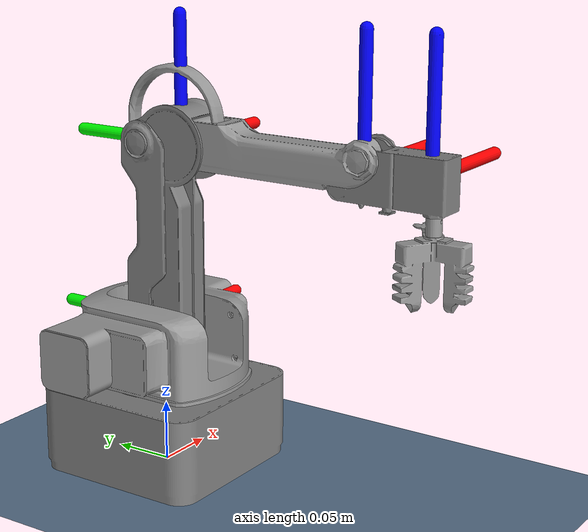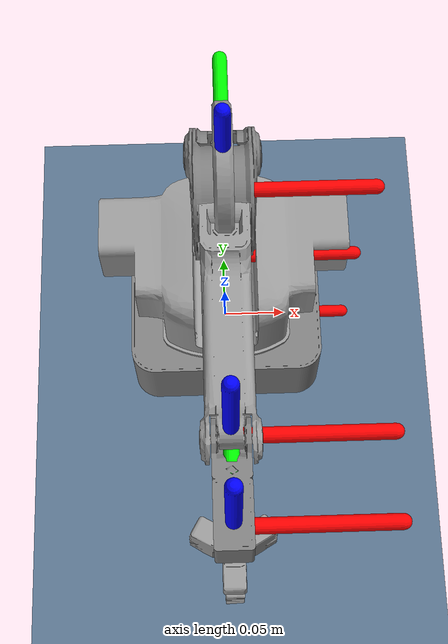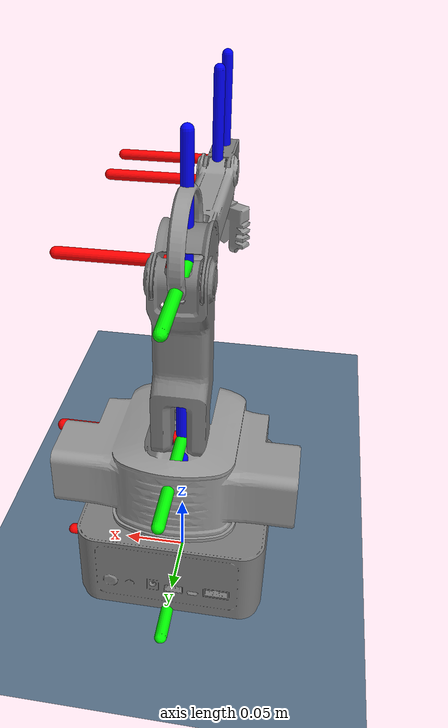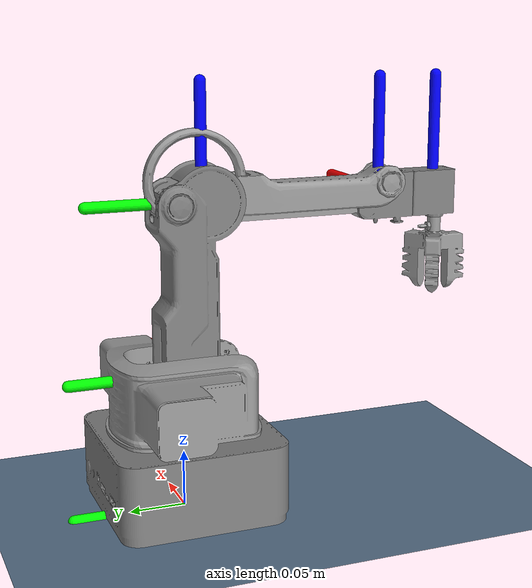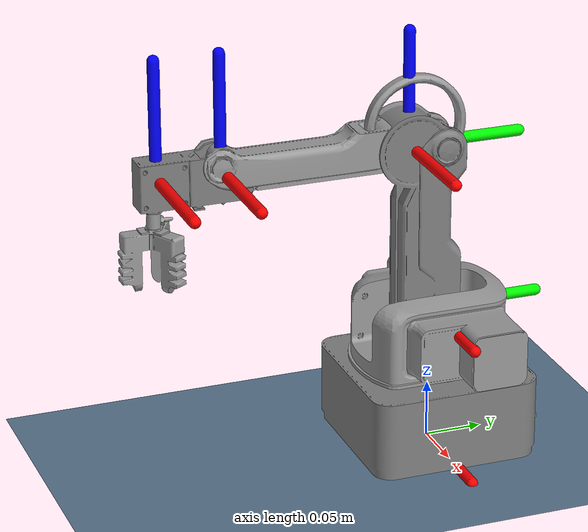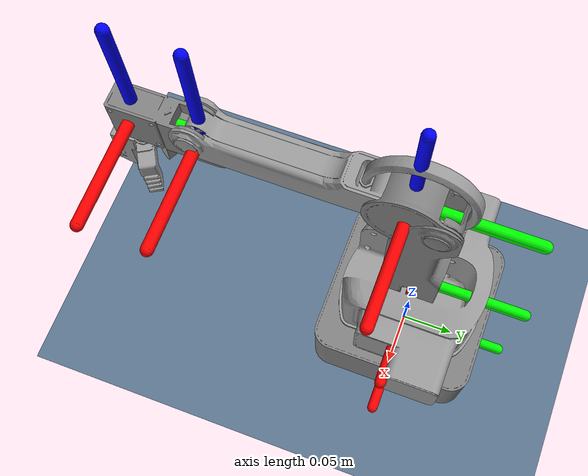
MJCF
<mujoco model="robot_arm">
  <compiler angle="radian"/>
  <option gravity="0 0 0"/>
  <default>
    <default class="/"/>
    <default class="coordinate_axes/"/>
    <default class="coordinate_axes_1/"/>
    <default class="coordinate_axes_2/"/>
    <default class="coordinate_axes_3/"/>
    <default class="coordinate_axes_4/"/>
    <default class="coordinate_axes_5/"/>
    <default class="coordinate_axes_6/"/>
  </default>
  <asset>
    <texture name="groundplane" type="2d" builtin="checker" rgb1="0.20000000000000001 0.29999999999999999 0.40000000000000002" rgb2="0.5 0.59999999999999998 0.69999999999999996" mark="edge" markrgb="0.80000000000000004 0.80000000000000004 0.80000000000000004" width="300" height="300"/>
    <material name="groundplane" class="/" texture="groundplane" texrepeat="5 5" texuniform="true" reflectance="0.5"/>
    <texture name="metal_gradient_bright" type="2d" builtin="gradient" rgb1="0.80000000000000004 0.80000000000000004 0.80000000000000004" rgb2="0.20000000000000001 0.20000000000000001 0.20000000000000001" width="100" height="100"/>
    <material name="metal_gradient_bright_material" class="/" texture="metal_gradient_bright" texuniform="true" reflectance="0.5"/>
    <texture name="metal_gradient_dark" type="2d" builtin="gradient" rgb1="0.40000000000000002 0.40000000000000002 0.40000000000000002" rgb2="0.80000000000000004 0.80000000000000004 0.80000000000000004" width="100" height="100"/>
    <material name="metal_gradient_dark_material" class="/" texture="metal_gradient_dark" texuniform="true" reflectance="0.5"/>
    <mesh name="base_mesh" class="/" file="magician_lite_base_simple.stl" scale="0.001 0.001 0.001"/>
    <mesh name="link1_mesh" class="/" file="magician_lite_link1_simple.stl" scale="0.001 0.001 0.001"/>
    <mesh name="link2_mesh" class="/" file="magician_lite_link2_simple.stl" scale="0.001 0.001 0.001"/>
    <mesh name="link3_mesh" class="/" file="magician_lite_link3_simple.stl" scale="0.001 0.001 0.001"/>
    <mesh name="link4_mesh" class="/" file="magician_lite_link4_simple.stl" scale="0.001 0.001 0.001"/>
    <mesh name="link5_mesh" class="/" file="magician_lite_link5_simple.stl" scale="0.001 0.001 0.001"/>
    <material name="coordinate_axes/red" class="coordinate_axes/" rgba="1 0 0 1"/>
    <material name="coordinate_axes/green" class="coordinate_axes/" rgba="0 1 0 1"/>
    <material name="coordinate_axes/blue" class="coordinate_axes/" rgba="0 0 1 1"/>
    <material name="coordinate_axes_1/red" class="coordinate_axes_1/" rgba="1 0 0 1"/>
    <material name="coordinate_axes_1/green" class="coordinate_axes_1/" rgba="0 1 0 1"/>
    <material name="coordinate_axes_1/blue" class="coordinate_axes_1/" rgba="0 0 1 1"/>
    <material name="coordinate_axes_2/red" class="coordinate_axes_2/" rgba="1 0 0 1"/>
    <material name="coordinate_axes_2/green" class="coordinate_axes_2/" rgba="0 1 0 1"/>
    <material name="coordinate_axes_2/blue" class="coordinate_axes_2/" rgba="0 0 1 1"/>
    <material name="coordinate_axes_3/red" class="coordinate_axes_3/" rgba="1 0 0 1"/>
    <material name="coordinate_axes_3/green" class="coordinate_axes_3/" rgba="0 1 0 1"/>
    <material name="coordinate_axes_3/blue" class="coordinate_axes_3/" rgba="0 0 1 1"/>
    <material name="coordinate_axes_4/red" class="coordinate_axes_4/" rgba="1 0 0 1"/>
    <material name="coordinate_axes_4/green" class="coordinate_axes_4/" rgba="0 1 0 1"/>
    <material name="coordinate_axes_4/blue" class="coordinate_axes_4/" rgba="0 0 1 1"/>
    <material name="coordinate_axes_5/red" class="coordinate_axes_5/" rgba="1 0 0 1"/>
    <material name="coordinate_axes_5/green" class="coordinate_axes_5/" rgba="0 1 0 1"/>
    <material name="coordinate_axes_5/blue" class="coordinate_axes_5/" rgba="0 0 1 1"/>
    <material name="coordinate_axes_6/red" class="coordinate_axes_6/" rgba="1 0 0 1"/>
    <material name="coordinate_axes_6/green" class="coordinate_axes_6/" rgba="0 1 0 1"/>
    <material name="coordinate_axes_6/blue" class="coordinate_axes_6/" rgba="0 0 1 1"/>
  </asset>
  <worldbody>
    <geom name="ground" class="/" type="plane" size="5 5 1" material="groundplane"/>
    <light name="//unnamed_light_0" class="/" pos="0 0 10" dir="0 0 -1"/>
    <body name="base">
      <geom name="base_geom" class="/" type="mesh" material="metal_gradient_bright_material" pos="0.02 0 0.107" mesh="base_mesh"/>
      <site name="//unnamed_site_0" class="/" pos="0 0 0"/>
      <body pos="0 0 0" name="coordinate_axes/">
        <body name="coordinate_axes/axes">
          <geom name="coordinate_axes//unnamed_geom_0" class="coordinate_axes/" type="capsule" contype="0" conaffinity="0" size="0.0050000000000000001" material="coordinate_axes/red" fromto="0 0 0 0.10000000000000001 0 0"/>
          <geom name="coordinate_axes//unnamed_geom_1" class="coordinate_axes/" type="capsule" contype="0" conaffinity="0" size="0.0050000000000000001" material="coordinate_axes/green" fromto="0 0 0 0 0.10000000000000001 0"/>
          <geom name="coordinate_axes//unnamed_geom_2" class="coordinate_axes/" type="capsule" contype="0" conaffinity="0" size="0.0050000000000000001" material="coordinate_axes/blue" fromto="0 0 0 0 0 0.10000000000000001"/>
        </body>
      </body>
      <body name="link1" pos="0 0 0.12200999999999999" quat="1 0 0 0">
        <geom name="link1_geom" class="/" type="mesh" material="metal_gradient_dark_material" pos="0.02 0 -0.014999999999999999" mesh="link1_mesh"/>
        <site name="//unnamed_site_1" class="/" pos="0 0 0"/>
        <body pos="0 0 0" name="coordinate_axes_1/">
          <body name="coordinate_axes_1/axes">
            <geom name="coordinate_axes_1//unnamed_geom_0" class="coordinate_axes_1/" type="capsule" contype="0" conaffinity="0" size="0.0050000000000000001" material="coordinate_axes_1/red" fromto="0 0 0 0.10000000000000001 0 0"/>
            <geom name="coordinate_axes_1//unnamed_geom_1" class="coordinate_axes_1/" type="capsule" contype="0" conaffinity="0" size="0.0050000000000000001" material="coordinate_axes_1/green" fromto="0 0 0 0 0.10000000000000001 0"/>
            <geom name="coordinate_axes_1//unnamed_geom_2" class="coordinate_axes_1/" type="capsule" contype="0" conaffinity="0" size="0.0050000000000000001" material="coordinate_axes_1/blue" fromto="0 0 0 0 0 0.10000000000000001"/>
          </body>
        </body>
        <joint name="joint1" class="/" type="hinge" axis="0 0 1" range="-3.1415926535897931 3.1415926535897931" damping="0.20000000000000001"/>
        <body name="link2" pos="0 0 0" quat="1 0 0 0">
          <geom name="link2_geom" class="/" type="mesh" material="metal_gradient_bright_material" pos="0.02 0 -0.014999999999999999" mesh="link2_mesh"/>
          <site name="//unnamed_site_2" class="/" pos="0 0 0"/>
          <body pos="0 0 0" name="coordinate_axes_2/">
            <body name="coordinate_axes_2/axes">
              <geom name="coordinate_axes_2//unnamed_geom_0" class="coordinate_axes_2/" type="capsule" contype="0" conaffinity="0" size="0.0050000000000000001" material="coordinate_axes_2/red" fromto="0 0 0 0.10000000000000001 0 0"/>
              <geom name="coordinate_axes_2//unnamed_geom_1" class="coordinate_axes_2/" type="capsule" contype="0" conaffinity="0" size="0.0050000000000000001" material="coordinate_axes_2/green" fromto="0 0 0 0 0.10000000000000001 0"/>
              <geom name="coordinate_axes_2//unnamed_geom_2" class="coordinate_axes_2/" type="capsule" contype="0" conaffinity="0" size="0.0050000000000000001" material="coordinate_axes_2/blue" fromto="0 0 0 0 0 0.10000000000000001"/>
            </body>
          </body>
          <joint name="joint2" class="/" type="hinge" axis="1 0 0" range="-3.1415926535897931 3.1415926535897931" damping="0.20000000000000001"/>
          <body name="link3" pos="0 -0.02 0.14999999999999999" quat="1 0 0 0">
            <geom name="link3_geom" class="/" type="mesh" material="metal_gradient_dark_material" pos="0.02 0.02 -0.16499999999999998" mesh="link3_mesh"/>
            <site name="//unnamed_site_3" class="/" pos="0 0 0"/>
            <body pos="0 0 0" name="coordinate_axes_3/">
              <body name="coordinate_axes_3/axes">
                <geom name="coordinate_axes_3//unnamed_geom_0" class="coordinate_axes_3/" type="capsule" contype="0" conaffinity="0" size="0.0050000000000000001" material="coordinate_axes_3/red" fromto="0 0 0 0.10000000000000001 0 0"/>
                <geom name="coordinate_axes_3//unnamed_geom_1" class="coordinate_axes_3/" type="capsule" contype="0" conaffinity="0" size="0.0050000000000000001" material="coordinate_axes_3/green" fromto="0 0 0 0 0.10000000000000001 0"/>
                <geom name="coordinate_axes_3//unnamed_geom_2" class="coordinate_axes_3/" type="capsule" contype="0" conaffinity="0" size="0.0050000000000000001" material="coordinate_axes_3/blue" fromto="0 0 0 0 0 0.10000000000000001"/>
              </body>
            </body>
            <joint name="joint3" class="/" type="hinge" axis="1 0 0" range="-3.1415926535897931 3.1415926535897931" damping="0.20000000000000001"/>
            <body name="link4" pos="0 -0.16500000000000001 0" quat="1 0 0 0">
              <geom name="link4_geom" class="/" type="mesh" material="metal_gradient_bright_material" pos="0.02 0.185 -0.16499999999999998" mesh="link4_mesh"/>
              <site name="//unnamed_site_4" class="/" pos="0 0 0"/>
              <body pos="0 0 0" name="coordinate_axes_4/">
                <body name="coordinate_axes_4/axes">
                  <geom name="coordinate_axes_4//unnamed_geom_0" class="coordinate_axes_4/" type="capsule" contype="0" conaffinity="0" size="0.0050000000000000001" material="coordinate_axes_4/red" fromto="0 0 0 0.10000000000000001 0 0"/>
                  <geom name="coordinate_axes_4//unnamed_geom_1" class="coordinate_axes_4/" type="capsule" contype="0" conaffinity="0" size="0.0050000000000000001" material="coordinate_axes_4/green" fromto="0 0 0 0 0.10000000000000001 0"/>
                  <geom name="coordinate_axes_4//unnamed_geom_2" class="coordinate_axes_4/" type="capsule" contype="0" conaffinity="0" size="0.0050000000000000001" material="coordinate_axes_4/blue" fromto="0 0 0 0 0 0.10000000000000001"/>
                </body>
              </body>
              <joint name="joint4" class="/" type="hinge" axis="1 0 0" range="-3.1415926535897931 3.1415926535897931" damping="0.20000000000000001"/>
              <body name="link5" pos="0 -0.055 0" quat="1 0 0 0">
                <geom name="link5_geom" class="/" type="mesh" material="metal_gradient_dark_material" pos="0.02 0.23999999999999999 -0.16499999999999998" mesh="link5_mesh"/>
                <site name="//unnamed_site_5" class="/" pos="0 0 0"/>
                <body pos="0 0 0" name="coordinate_axes_5/">
                  <body name="coordinate_axes_5/axes">
                    <geom name="coordinate_axes_5//unnamed_geom_0" class="coordinate_axes_5/" type="capsule" contype="0" conaffinity="0" size="0.0050000000000000001" material="coordinate_axes_5/red" fromto="0 0 0 0.10000000000000001 0 0"/>
                    <geom name="coordinate_axes_5//unnamed_geom_1" class="coordinate_axes_5/" type="capsule" contype="0" conaffinity="0" size="0.0050000000000000001" material="coordinate_axes_5/green" fromto="0 0 0 0 0.10000000000000001 0"/>
                    <geom name="coordinate_axes_5//unnamed_geom_2" class="coordinate_axes_5/" type="capsule" contype="0" conaffinity="0" size="0.0050000000000000001" material="coordinate_axes_5/blue" fromto="0 0 0 0 0 0.10000000000000001"/>
                  </body>
                </body>
                <joint name="joint5" class="/" type="hinge" axis="0 0 1" range="-3.1415926535897931 3.1415926535897931" damping="0.20000000000000001"/>
              </body>
            </body>
          </body>
        </body>
      </body>
    </body>
    <body name="ball">
      <geom name="//unnamed_geom_7" class="/" type="sphere" contype="0" conaffinity="0" size="0.01" rgba="1 1 0 1" pos="0 0 0"/>
      <joint name="joint_x" class="/" type="slide" axis="1 0 0" damping="5"/>
      <joint name="joint_y" class="/" type="slide" axis="0 1 0" damping="5"/>
      <joint name="joint_z" class="/" type="slide" axis="0 0 1" damping="5"/>
      <site name="//unnamed_site_6" class="/"/>
      <body name="coordinate_axes_6/">
        <body name="coordinate_axes_6/axes">
          <geom name="coordinate_axes_6//unnamed_geom_0" class="coordinate_axes_6/" type="capsule" contype="0" conaffinity="0" size="0.0030000000000000001" material="coordinate_axes_6/red" fromto="0 0 0 0.050000000000000003 0 0"/>
          <geom name="coordinate_axes_6//unnamed_geom_1" class="coordinate_axes_6/" type="capsule" contype="0" conaffinity="0" size="0.0030000000000000001" material="coordinate_axes_6/green" fromto="0 0 0 0 0.050000000000000003 0"/>
          <geom name="coordinate_axes_6//unnamed_geom_2" class="coordinate_axes_6/" type="capsule" contype="0" conaffinity="0" size="0.0030000000000000001" material="coordinate_axes_6/blue" fromto="0 0 0 0 0 0.050000000000000003"/>
        </body>
      </body>
    </body>
  </worldbody>
  <actuator>
    <position name="motor1" class="/" ctrlrange="-3.1415926535897931 3.1415926535897931" gear="1" joint="joint1"/>
    <position name="motor2" class="/" ctrlrange="-3.1415926535897931 3.1415926535897931" gear="1" joint="joint2"/>
    <position name="motor3" class="/" ctrlrange="-3.1415926535897931 3.1415926535897931" gear="1" joint="joint3"/>
    <position name="motor4" class="/" ctrlrange="-3.1415926535897931 3.1415926535897931" gear="1" joint="joint4"/>
    <position name="motor5" class="/" ctrlrange="-3.1415926535897931 3.1415926535897931" gear="1" joint="joint5"/>
    <position name="ball_x" class="/" joint="joint_x" kp="20" kv="0.5"/>
    <position name="ball_y" class="/" joint="joint_y" kp="20" kv="0.5"/>
    <position name="ball_z" class="/" joint="joint_z" kp="20" kv="0.5"/>
  </actuator>
</mujoco>
